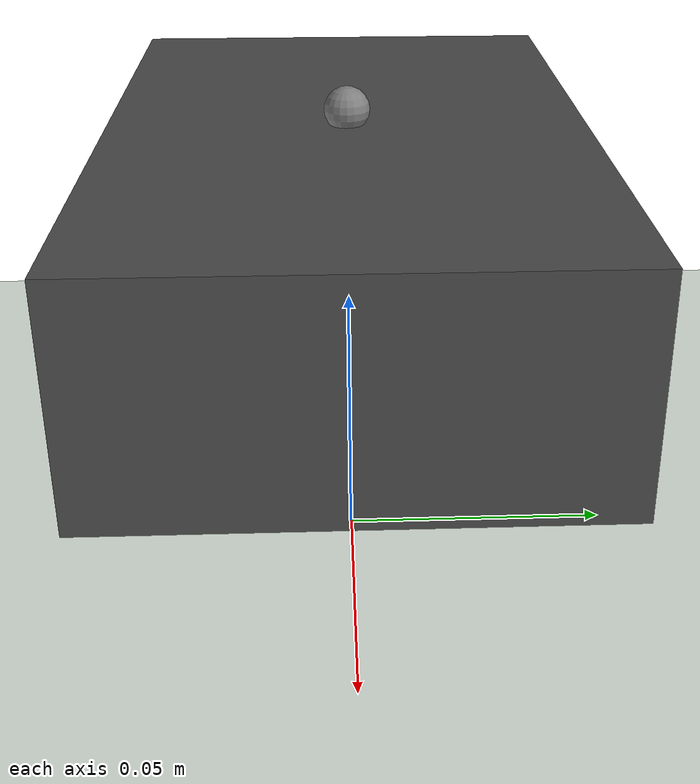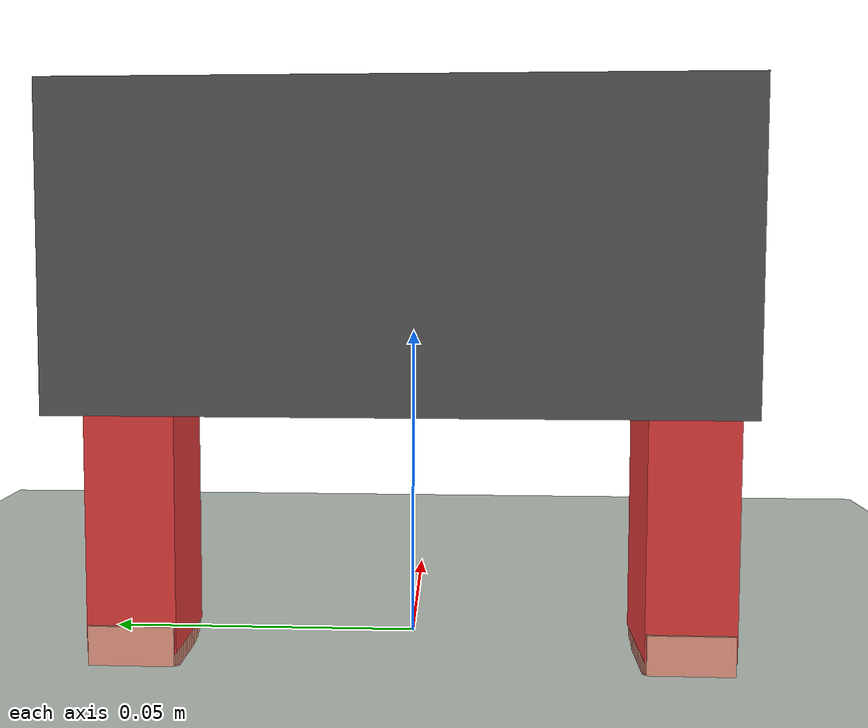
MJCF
<!-- Standalone MuJoCo XML updated from the v215 body for the current live GrowBot body, 2026-05-05. -->
<!-- Big measured geometry: body 132x83x39 mm; floor-to-body-bottom 44 mm; floor-to-servo-horn center 54 mm; legs 20 mm wide x 13.5 mm thick; IMU center 65 mm back from front at bottom shell. -->
<mujoco model="GrowBot_CurrentBody_20260505">
  <option gravity="0 0 -9.81" timestep="0.002000"/>
  <default>
    <geom solref="0.015 1" solimp="0.80 0.80 0.01" condim="3"/>
    <joint damping="0.040"/>
  </default>
  <worldbody>
    <geom name="floor" type="plane" size="2 2 0.1" rgba="0.88 0.92 0.88 1" friction="0.9500 0.1000 0.0500"/>
    <body name="base_body" pos="0 0 0.063500">
      <joint name="root_joint" type="free"/>
      <geom name="body_main" type="box" size="0.066000 0.041500 0.019500" pos="0 0 0" mass="0.070000" rgba="0.30 0.30 0.30 1"/>
      <geom name="servo_left" type="box" size="0.012 0.006 0.012" pos="-0.015000 -0.035500 -0.008500" mass="0.009000" rgba="0.18 0.18 0.18 1"/>
      <geom name="servo_right" type="box" size="0.012 0.006 0.012" pos="-0.015000 0.035500 -0.008500" mass="0.009000" rgba="0.18 0.18 0.18 1"/>
      <site name="imu_site" pos="0.001000 0 -0.019500" size="0.005"/>
      <site name="up_dir" pos="0 0 0.022" size="0.004"/>

      <body name="leg_left" pos="-0.015000 -0.041500 -0.008500">
        <joint name="joint_left" type="hinge" axis="0 1 0" limited="true" range="-90 90"/>
        <geom name="leg_left_geom" type="box" size="0.010000 0.006750 0.026000" pos="0 0 -0.026000" mass="0.012000" rgba="0.80 0.20 0.20 1"/>
        <geom name="left_foot_seg_0" type="box" size="0.000742 0.006500 0.003000" pos="-0.009800 0.000000 -0.050845" mass="0.000267" rgba="0.82 0.54 0.46 1" friction="1.0000 0.1000 0.0500"/>
        <geom name="left_foot_seg_1" type="box" size="0.000742 0.006500 0.003000" pos="-0.008400 0.000000 -0.051162" mass="0.000267" rgba="0.82 0.54 0.46 1" friction="1.0000 0.1000 0.0500"/>
        <geom name="left_foot_seg_2" type="box" size="0.000742 0.006500 0.003000" pos="-0.007000 0.000000 -0.051616" mass="0.000267" rgba="0.82 0.54 0.46 1" friction="1.0000 0.1000 0.0500"/>
        <geom name="left_foot_seg_3" type="box" size="0.000742 0.006500 0.003000" pos="-0.005600 0.000000 -0.051946" mass="0.000267" rgba="0.82 0.54 0.46 1" friction="1.0000 0.1000 0.0500"/>
        <geom name="left_foot_seg_4" type="box" size="0.000742 0.006500 0.003000" pos="-0.004200 0.000000 -0.052000" mass="0.000267" rgba="0.82 0.54 0.46 1" friction="1.0000 0.1000 0.0500"/>
        <geom name="left_foot_seg_5" type="box" size="0.000742 0.006500 0.003000" pos="-0.002800 0.000000 -0.052000" mass="0.000267" rgba="0.82 0.54 0.46 1" friction="1.0000 0.1000 0.0500"/>
        <geom name="left_foot_seg_6" type="box" size="0.000742 0.006500 0.003000" pos="-0.001400 0.000000 -0.052000" mass="0.000267" rgba="0.82 0.54 0.46 1" friction="1.0000 0.1000 0.0500"/>
        <geom name="left_foot_seg_7" type="box" size="0.000742 0.006500 0.003000" pos="0.000000 0.000000 -0.052000" mass="0.000267" rgba="0.82 0.54 0.46 1" friction="1.0000 0.1000 0.0500"/>
        <geom name="left_foot_seg_8" type="box" size="0.000742 0.006500 0.003000" pos="0.001400 0.000000 -0.052000" mass="0.000267" rgba="0.82 0.54 0.46 1" friction="1.0000 0.1000 0.0500"/>
        <geom name="left_foot_seg_9" type="box" size="0.000742 0.006500 0.003000" pos="0.002800 0.000000 -0.052000" mass="0.000267" rgba="0.82 0.54 0.46 1" friction="1.0000 0.1000 0.0500"/>
        <geom name="left_foot_seg_10" type="box" size="0.000742 0.006500 0.003000" pos="0.004200 0.000000 -0.052000" mass="0.000267" rgba="0.82 0.54 0.46 1" friction="1.0000 0.1000 0.0500"/>
        <geom name="left_foot_seg_11" type="box" size="0.000742 0.006500 0.003000" pos="0.005600 0.000000 -0.051946" mass="0.000267" rgba="0.82 0.54 0.46 1" friction="1.0000 0.1000 0.0500"/>
        <geom name="left_foot_seg_12" type="box" size="0.000742 0.006500 0.003000" pos="0.007000 0.000000 -0.051616" mass="0.000267" rgba="0.82 0.54 0.46 1" friction="1.0000 0.1000 0.0500"/>
        <geom name="left_foot_seg_13" type="box" size="0.000742 0.006500 0.003000" pos="0.008400 0.000000 -0.051162" mass="0.000267" rgba="0.82 0.54 0.46 1" friction="1.0000 0.1000 0.0500"/>
        <geom name="left_foot_seg_14" type="box" size="0.000742 0.006500 0.003000" pos="0.009800 0.000000 -0.050845" mass="0.000267" rgba="0.82 0.54 0.46 1" friction="1.0000 0.1000 0.0500"/>
      </body>

      <body name="leg_right" pos="-0.015000 0.041500 -0.008500">
        <joint name="joint_right" type="hinge" axis="0 1 0" limited="true" range="-90 90"/>
        <geom name="leg_right_geom" type="box" size="0.010000 0.006750 0.026000" pos="0 0 -0.026000" mass="0.012000" rgba="0.80 0.20 0.20 1"/>
        <geom name="right_foot_seg_0" type="box" size="0.000742 0.006500 0.003000" pos="-0.009800 0.000000 -0.050845" mass="0.000267" rgba="0.82 0.54 0.46 1" friction="1.0000 0.1000 0.0500"/>
        <geom name="right_foot_seg_1" type="box" size="0.000742 0.006500 0.003000" pos="-0.008400 0.000000 -0.051162" mass="0.000267" rgba="0.82 0.54 0.46 1" friction="1.0000 0.1000 0.0500"/>
        <geom name="right_foot_seg_2" type="box" size="0.000742 0.006500 0.003000" pos="-0.007000 0.000000 -0.051616" mass="0.000267" rgba="0.82 0.54 0.46 1" friction="1.0000 0.1000 0.0500"/>
        <geom name="right_foot_seg_3" type="box" size="0.000742 0.006500 0.003000" pos="-0.005600 0.000000 -0.051946" mass="0.000267" rgba="0.82 0.54 0.46 1" friction="1.0000 0.1000 0.0500"/>
        <geom name="right_foot_seg_4" type="box" size="0.000742 0.006500 0.003000" pos="-0.004200 0.000000 -0.052000" mass="0.000267" rgba="0.82 0.54 0.46 1" friction="1.0000 0.1000 0.0500"/>
        <geom name="right_foot_seg_5" type="box" size="0.000742 0.006500 0.003000" pos="-0.002800 0.000000 -0.052000" mass="0.000267" rgba="0.82 0.54 0.46 1" friction="1.0000 0.1000 0.0500"/>
        <geom name="right_foot_seg_6" type="box" size="0.000742 0.006500 0.003000" pos="-0.001400 0.000000 -0.052000" mass="0.000267" rgba="0.82 0.54 0.46 1" friction="1.0000 0.1000 0.0500"/>
        <geom name="right_foot_seg_7" type="box" size="0.000742 0.006500 0.003000" pos="0.000000 0.000000 -0.052000" mass="0.000267" rgba="0.82 0.54 0.46 1" friction="1.0000 0.1000 0.0500"/>
        <geom name="right_foot_seg_8" type="box" size="0.000742 0.006500 0.003000" pos="0.001400 0.000000 -0.052000" mass="0.000267" rgba="0.82 0.54 0.46 1" friction="1.0000 0.1000 0.0500"/>
        <geom name="right_foot_seg_9" type="box" size="0.000742 0.006500 0.003000" pos="0.002800 0.000000 -0.052000" mass="0.000267" rgba="0.82 0.54 0.46 1" friction="1.0000 0.1000 0.0500"/>
        <geom name="right_foot_seg_10" type="box" size="0.000742 0.006500 0.003000" pos="0.004200 0.000000 -0.052000" mass="0.000267" rgba="0.82 0.54 0.46 1" friction="1.0000 0.1000 0.0500"/>
        <geom name="right_foot_seg_11" type="box" size="0.000742 0.006500 0.003000" pos="0.005600 0.000000 -0.051946" mass="0.000267" rgba="0.82 0.54 0.46 1" friction="1.0000 0.1000 0.0500"/>
        <geom name="right_foot_seg_12" type="box" size="0.000742 0.006500 0.003000" pos="0.007000 0.000000 -0.051616" mass="0.000267" rgba="0.82 0.54 0.46 1" friction="1.0000 0.1000 0.0500"/>
        <geom name="right_foot_seg_13" type="box" size="0.000742 0.006500 0.003000" pos="0.008400 0.000000 -0.051162" mass="0.000267" rgba="0.82 0.54 0.46 1" friction="1.0000 0.1000 0.0500"/>
        <geom name="right_foot_seg_14" type="box" size="0.000742 0.006500 0.003000" pos="0.009800 0.000000 -0.050845" mass="0.000267" rgba="0.82 0.54 0.46 1" friction="1.0000 0.1000 0.0500"/>
      </body>
    </body>
  </worldbody>
  <sensor>
    <accelerometer name="acc" site="imu_site" noise="0.03" cutoff="30"/>
    <gyro name="gyro" site="imu_site" noise="0.01" cutoff="30"/>
  </sensor>
  <actuator>
    <position name="servo_left" joint="joint_left" kp="0.8500"/>
    <position name="servo_right" joint="joint_right" kp="0.8500"/>
  </actuator>
</mujoco>
